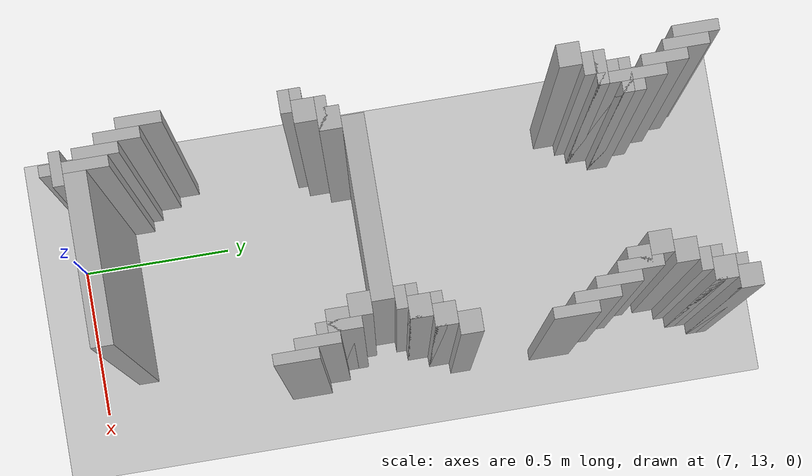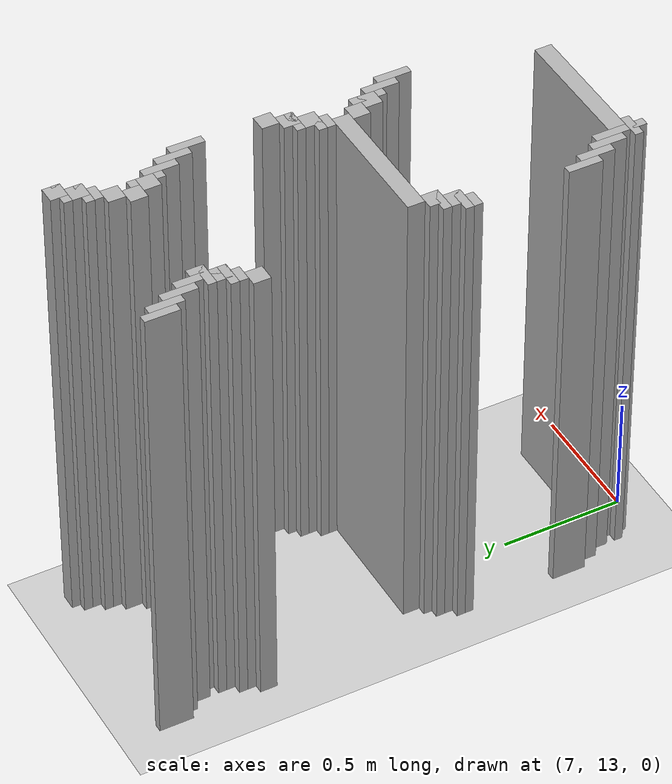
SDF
<sdf version="1.6">
 <world name="slam_world">
  <model name="ground_plane">
   <static>true</static>
   <link name="link">
    <collision name="collision">
     <geometry><plane><normal>0 0 1</normal><size>100 100</size></plane></geometry>
    </collision>
    <visual name="visual">
     <geometry><plane><normal>0 0 1</normal><size>100 100</size></plane></geometry>
     <material>
      <ambient>0.8 0.8 0.8 1</ambient>
      <diffuse>0.8 0.8 0.8 1</diffuse>
      <specular>0.8 0.8 0.8 1</specular>
     </material>
    </visual>
   </link>
  </model>
  <model name="wall_778">
   <static>true</static>
   <pose>6.769141531322505 15.034802784222737 1.0 0 0 0</pose>
   <link name="link">
    <collision name="collision">
     <geometry><box><size>0.03480278422273782 0.13921113689095127 2.0</size></box></geometry>
    </collision>
    <visual name="visual">
     <geometry><box><size>0.03480278422273782 0.13921113689095127 2.0</size></box></geometry>
     <material><ambient>0.5 0.5 0.5 1</ambient><diffuse>0.7 0.7 0.7 1</diffuse></material>
    </visual>
   </link>
  </model>
  <model name="wall_779">
   <static>true</static>
   <pose>7.517401392111369 15.069605568445475 1.0 0 0 0</pose>
   <link name="link">
    <collision name="collision">
     <geometry><box><size>0.06960556844547564 0.06960556844547564 2.0</size></box></geometry>
    </collision>
    <visual name="visual">
     <geometry><box><size>0.06960556844547564 0.06960556844547564 2.0</size></box></geometry>
     <material><ambient>0.5 0.5 0.5 1</ambient><diffuse>0.7 0.7 0.7 1</diffuse></material>
    </visual>
   </link>
  </model>
  <model name="wall_790">
   <static>true</static>
   <pose>6.803944315545244 15.0 1.0 0 0 0</pose>
   <link name="link">
    <collision name="collision">
     <geometry><box><size>0.03480278422273782 0.13921113689095127 2.0</size></box></geometry>
    </collision>
    <visual name="visual">
     <geometry><box><size>0.03480278422273782 0.13921113689095127 2.0</size></box></geometry>
     <material><ambient>0.5 0.5 0.5 1</ambient><diffuse>0.7 0.7 0.7 1</diffuse></material>
    </visual>
   </link>
  </model>
  <model name="wall_791">
   <static>true</static>
   <pose>7.5 15.052204176334106 1.0 0 0 0</pose>
   <link name="link">
    <collision name="collision">
     <geometry><box><size>0.10440835266821345 0.03480278422273782 2.0</size></box></geometry>
    </collision>
    <visual name="visual">
     <geometry><box><size>0.10440835266821345 0.03480278422273782 2.0</size></box></geometry>
     <material><ambient>0.5 0.5 0.5 1</ambient><diffuse>0.7 0.7 0.7 1</diffuse></material>
    </visual>
   </link>
  </model>
  <model name="wall_801">
   <static>true</static>
   <pose>7.48259860788863 15.0 1.0 0 0 0</pose>
   <link name="link">
    <collision name="collision">
     <geometry><box><size>0.06960556844547564 0.06960556844547564 2.0</size></box></geometry>
    </collision>
    <visual name="visual">
     <geometry><box><size>0.06960556844547564 0.06960556844547564 2.0</size></box></geometry>
     <material><ambient>0.5 0.5 0.5 1</ambient><diffuse>0.7 0.7 0.7 1</diffuse></material>
    </visual>
   </link>
  </model>
  <model name="wall_811">
   <static>true</static>
   <pose>6.838747099767981 14.930394431554523 1.0 0 0 0</pose>
   <link name="link">
    <collision name="collision">
     <geometry><box><size>0.03480278422273782 0.13921113689095127 2.0</size></box></geometry>
    </collision>
    <visual name="visual">
     <geometry><box><size>0.03480278422273782 0.13921113689095127 2.0</size></box></geometry>
     <material><ambient>0.5 0.5 0.5 1</ambient><diffuse>0.7 0.7 0.7 1</diffuse></material>
    </visual>
   </link>
  </model>
  <model name="wall_812">
   <static>true</static>
   <pose>7.465197215777262 14.982598607888631 1.0 0 0 0</pose>
   <link name="link">
    <collision name="collision">
     <geometry><box><size>0.10440835266821345 0.03480278422273782 2.0</size></box></geometry>
    </collision>
    <visual name="visual">
     <geometry><box><size>0.10440835266821345 0.03480278422273782 2.0</size></box></geometry>
     <material><ambient>0.5 0.5 0.5 1</ambient><diffuse>0.7 0.7 0.7 1</diffuse></material>
    </visual>
   </link>
  </model>
  <model name="wall_821">
   <static>true</static>
   <pose>7.447795823665893 14.947795823665892 1.0 0 0 0</pose>
   <link name="link">
    <collision name="collision">
     <geometry><box><size>0.06960556844547564 0.03480278422273782 2.0</size></box></geometry>
    </collision>
    <visual name="visual">
     <geometry><box><size>0.06960556844547564 0.03480278422273782 2.0</size></box></geometry>
     <material><ambient>0.5 0.5 0.5 1</ambient><diffuse>0.7 0.7 0.7 1</diffuse></material>
    </visual>
   </link>
  </model>
  <model name="wall_831">
   <static>true</static>
   <pose>6.8735498839907185 14.825986078886311 1.0 0 0 0</pose>
   <link name="link">
    <collision name="collision">
     <geometry><box><size>0.03480278422273782 0.2088167053364269 2.0</size></box></geometry>
    </collision>
    <visual name="visual">
     <geometry><box><size>0.03480278422273782 0.2088167053364269 2.0</size></box></geometry>
     <material><ambient>0.5 0.5 0.5 1</ambient><diffuse>0.7 0.7 0.7 1</diffuse></material>
    </visual>
   </link>
  </model>
  <model name="wall_832">
   <static>true</static>
   <pose>7.412993039443156 14.895591647331786 1.0 0 0 0</pose>
   <link name="link">
    <collision name="collision">
     <geometry><box><size>0.06960556844547564 0.06960556844547564 2.0</size></box></geometry>
    </collision>
    <visual name="visual">
     <geometry><box><size>0.06960556844547564 0.06960556844547564 2.0</size></box></geometry>
     <material><ambient>0.5 0.5 0.5 1</ambient><diffuse>0.7 0.7 0.7 1</diffuse></material>
    </visual>
   </link>
  </model>
  <model name="wall_849">
   <static>true</static>
   <pose>6.908352668213457 14.825986078886311 1.0 0 0 0</pose>
   <link name="link">
    <collision name="collision">
     <geometry><box><size>0.03480278422273782 0.06960556844547564 2.0</size></box></geometry>
    </collision>
    <visual name="visual">
     <geometry><box><size>0.03480278422273782 0.06960556844547564 2.0</size></box></geometry>
     <material><ambient>0.5 0.5 0.5 1</ambient><diffuse>0.7 0.7 0.7 1</diffuse></material>
    </visual>
   </link>
  </model>
  <model name="wall_850">
   <static>true</static>
   <pose>7.378190255220417 14.825986078886311 1.0 0 0 0</pose>
   <link name="link">
    <collision name="collision">
     <geometry><box><size>0.06960556844547564 0.06960556844547564 2.0</size></box></geometry>
    </collision>
    <visual name="visual">
     <geometry><box><size>0.06960556844547564 0.06960556844547564 2.0</size></box></geometry>
     <material><ambient>0.5 0.5 0.5 1</ambient><diffuse>0.7 0.7 0.7 1</diffuse></material>
    </visual>
   </link>
  </model>
  <model name="wall_861">
   <static>true</static>
   <pose>6.8735498839907185 14.80858468677494 1.0 0 0 0</pose>
   <link name="link">
    <collision name="collision">
     <geometry><box><size>0.10440835266821345 0.03480278422273782 2.0</size></box></geometry>
    </collision>
    <visual name="visual">
     <geometry><box><size>0.10440835266821345 0.03480278422273782 2.0</size></box></geometry>
     <material><ambient>0.5 0.5 0.5 1</ambient><diffuse>0.7 0.7 0.7 1</diffuse></material>
    </visual>
   </link>
  </model>
  <model name="wall_862">
   <static>true</static>
   <pose>7.430394431554524 14.756380510440835 1.0 0 0 0</pose>
   <link name="link">
    <collision name="collision">
     <geometry><box><size>0.03480278422273782 0.13921113689095127 2.0</size></box></geometry>
    </collision>
    <visual name="visual">
     <geometry><box><size>0.03480278422273782 0.13921113689095127 2.0</size></box></geometry>
     <material><ambient>0.5 0.5 0.5 1</ambient><diffuse>0.7 0.7 0.7 1</diffuse></material>
    </visual>
   </link>
  </model>
  <model name="wall_872">
   <static>true</static>
   <pose>6.85614849187935 14.756380510440835 1.0 0 0 0</pose>
   <link name="link">
    <collision name="collision">
     <geometry><box><size>0.06960556844547564 0.06960556844547564 2.0</size></box></geometry>
    </collision>
    <visual name="visual">
     <geometry><box><size>0.06960556844547564 0.06960556844547564 2.0</size></box></geometry>
     <material><ambient>0.5 0.5 0.5 1</ambient><diffuse>0.7 0.7 0.7 1</diffuse></material>
    </visual>
   </link>
  </model>
  <model name="wall_873">
   <static>true</static>
   <pose>7.412993039443156 14.756380510440835 1.0 0 0 0</pose>
   <link name="link">
    <collision name="collision">
     <geometry><box><size>0.06960556844547564 0.06960556844547564 2.0</size></box></geometry>
    </collision>
    <visual name="visual">
     <geometry><box><size>0.06960556844547564 0.06960556844547564 2.0</size></box></geometry>
     <material><ambient>0.5 0.5 0.5 1</ambient><diffuse>0.7 0.7 0.7 1</diffuse></material>
    </visual>
   </link>
  </model>
  <model name="wall_884">
   <static>true</static>
   <pose>6.838747099767981 14.738979118329466 1.0 0 0 0</pose>
   <link name="link">
    <collision name="collision">
     <geometry><box><size>0.10440835266821345 0.03480278422273782 2.0</size></box></geometry>
    </collision>
    <visual name="visual">
     <geometry><box><size>0.10440835266821345 0.03480278422273782 2.0</size></box></geometry>
     <material><ambient>0.5 0.5 0.5 1</ambient><diffuse>0.7 0.7 0.7 1</diffuse></material>
    </visual>
   </link>
  </model>
  <model name="wall_885">
   <static>true</static>
   <pose>7.465197215777262 14.68677494199536 1.0 0 0 0</pose>
   <link name="link">
    <collision name="collision">
     <geometry><box><size>0.03480278422273782 0.13921113689095127 2.0</size></box></geometry>
    </collision>
    <visual name="visual">
     <geometry><box><size>0.03480278422273782 0.13921113689095127 2.0</size></box></geometry>
     <material><ambient>0.5 0.5 0.5 1</ambient><diffuse>0.7 0.7 0.7 1</diffuse></material>
    </visual>
   </link>
  </model>
  <model name="wall_894">
   <static>true</static>
   <pose>6.821345707656612 14.704176334106728 1.0 0 0 0</pose>
   <link name="link">
    <collision name="collision">
     <geometry><box><size>0.06960556844547564 0.03480278422273782 2.0</size></box></geometry>
    </collision>
    <visual name="visual">
     <geometry><box><size>0.06960556844547564 0.03480278422273782 2.0</size></box></geometry>
     <material><ambient>0.5 0.5 0.5 1</ambient><diffuse>0.7 0.7 0.7 1</diffuse></material>
    </visual>
   </link>
  </model>
  <model name="wall_904">
   <static>true</static>
   <pose>6.786542923433874 14.65197215777262 1.0 0 0 0</pose>
   <link name="link">
    <collision name="collision">
     <geometry><box><size>0.06960556844547564 0.06960556844547564 2.0</size></box></geometry>
    </collision>
    <visual name="visual">
     <geometry><box><size>0.06960556844547564 0.06960556844547564 2.0</size></box></geometry>
     <material><ambient>0.5 0.5 0.5 1</ambient><diffuse>0.7 0.7 0.7 1</diffuse></material>
    </visual>
   </link>
  </model>
  <model name="wall_905">
   <static>true</static>
   <pose>7.5 14.617169373549883 1.0 0 0 0</pose>
   <link name="link">
    <collision name="collision">
     <geometry><box><size>0.03480278422273782 0.13921113689095127 2.0</size></box></geometry>
    </collision>
    <visual name="visual">
     <geometry><box><size>0.03480278422273782 0.13921113689095127 2.0</size></box></geometry>
     <material><ambient>0.5 0.5 0.5 1</ambient><diffuse>0.7 0.7 0.7 1</diffuse></material>
    </visual>
   </link>
  </model>
  <model name="wall_917">
   <static>true</static>
   <pose>7.534802784222737 14.547563805104408 1.0 0 0 0</pose>
   <link name="link">
    <collision name="collision">
     <geometry><box><size>0.03480278422273782 0.13921113689095127 2.0</size></box></geometry>
    </collision>
    <visual name="visual">
     <geometry><box><size>0.03480278422273782 0.13921113689095127 2.0</size></box></geometry>
     <material><ambient>0.5 0.5 0.5 1</ambient><diffuse>0.7 0.7 0.7 1</diffuse></material>
    </visual>
   </link>
  </model>
  <model name="wall_1037">
   <static>true</static>
   <pose>7.517401392111369 14.234338747099768 1.0 0 0 0</pose>
   <link name="link">
    <collision name="collision">
     <geometry><box><size>0.06960556844547564 0.06960556844547564 2.0</size></box></geometry>
    </collision>
    <visual name="visual">
     <geometry><box><size>0.06960556844547564 0.06960556844547564 2.0</size></box></geometry>
     <material><ambient>0.5 0.5 0.5 1</ambient><diffuse>0.7 0.7 0.7 1</diffuse></material>
    </visual>
   </link>
  </model>
  <model name="wall_1052">
   <static>true</static>
   <pose>7.48259860788863 14.164733178654291 1.0 0 0 0</pose>
   <link name="link">
    <collision name="collision">
     <geometry><box><size>0.06960556844547564 0.06960556844547564 2.0</size></box></geometry>
    </collision>
    <visual name="visual">
     <geometry><box><size>0.06960556844547564 0.06960556844547564 2.0</size></box></geometry>
     <material><ambient>0.5 0.5 0.5 1</ambient><diffuse>0.7 0.7 0.7 1</diffuse></material>
    </visual>
   </link>
  </model>
  <model name="wall_1067">
   <static>true</static>
   <pose>7.465197215777262 14.147331786542923 1.0 0 0 0</pose>
   <link name="link">
    <collision name="collision">
     <geometry><box><size>0.10440835266821345 0.03480278422273782 2.0</size></box></geometry>
    </collision>
    <visual name="visual">
     <geometry><box><size>0.10440835266821345 0.03480278422273782 2.0</size></box></geometry>
     <material><ambient>0.5 0.5 0.5 1</ambient><diffuse>0.7 0.7 0.7 1</diffuse></material>
    </visual>
   </link>
  </model>
  <model name="wall_1079">
   <static>true</static>
   <pose>7.447795823665893 14.095127610208817 1.0 0 0 0</pose>
   <link name="link">
    <collision name="collision">
     <geometry><box><size>0.06960556844547564 0.06960556844547564 2.0</size></box></geometry>
    </collision>
    <visual name="visual">
     <geometry><box><size>0.06960556844547564 0.06960556844547564 2.0</size></box></geometry>
     <material><ambient>0.5 0.5 0.5 1</ambient><diffuse>0.7 0.7 0.7 1</diffuse></material>
    </visual>
   </link>
  </model>
  <model name="wall_1090">
   <static>true</static>
   <pose>7.430394431554524 14.077726218097448 1.0 0 0 0</pose>
   <link name="link">
    <collision name="collision">
     <geometry><box><size>0.10440835266821345 0.03480278422273782 2.0</size></box></geometry>
    </collision>
    <visual name="visual">
     <geometry><box><size>0.10440835266821345 0.03480278422273782 2.0</size></box></geometry>
     <material><ambient>0.5 0.5 0.5 1</ambient><diffuse>0.7 0.7 0.7 1</diffuse></material>
    </visual>
   </link>
  </model>
  <model name="wall_1102">
   <static>true</static>
   <pose>7.412993039443156 14.042923433874709 1.0 0 0 0</pose>
   <link name="link">
    <collision name="collision">
     <geometry><box><size>0.06960556844547564 0.03480278422273782 2.0</size></box></geometry>
    </collision>
    <visual name="visual">
     <geometry><box><size>0.06960556844547564 0.03480278422273782 2.0</size></box></geometry>
     <material><ambient>0.5 0.5 0.5 1</ambient><diffuse>0.7 0.7 0.7 1</diffuse></material>
    </visual>
   </link>
  </model>
  <model name="wall_1112">
   <static>true</static>
   <pose>7.134570765661253 13.990719257540603 1.0 0 0 0</pose>
   <link name="link">
    <collision name="collision">
     <geometry><box><size>0.5568445475638051 0.06960556844547564 2.0</size></box></geometry>
    </collision>
    <visual name="visual">
     <geometry><box><size>0.5568445475638051 0.06960556844547564 2.0</size></box></geometry>
     <material><ambient>0.5 0.5 0.5 1</ambient><diffuse>0.7 0.7 0.7 1</diffuse></material>
    </visual>
   </link>
  </model>
  <model name="wall_1126">
   <static>true</static>
   <pose>6.85614849187935 13.921113689095128 1.0 0 0 0</pose>
   <link name="link">
    <collision name="collision">
     <geometry><box><size>0.06960556844547564 0.06960556844547564 2.0</size></box></geometry>
    </collision>
    <visual name="visual">
     <geometry><box><size>0.06960556844547564 0.06960556844547564 2.0</size></box></geometry>
     <material><ambient>0.5 0.5 0.5 1</ambient><diffuse>0.7 0.7 0.7 1</diffuse></material>
    </visual>
   </link>
  </model>
  <model name="wall_1127">
   <static>true</static>
   <pose>7.412993039443156 13.921113689095128 1.0 0 0 0</pose>
   <link name="link">
    <collision name="collision">
     <geometry><box><size>0.06960556844547564 0.06960556844547564 2.0</size></box></geometry>
    </collision>
    <visual name="visual">
     <geometry><box><size>0.06960556844547564 0.06960556844547564 2.0</size></box></geometry>
     <material><ambient>0.5 0.5 0.5 1</ambient><diffuse>0.7 0.7 0.7 1</diffuse></material>
    </visual>
   </link>
  </model>
  <model name="wall_1141">
   <static>true</static>
   <pose>6.838747099767981 13.903712296983759 1.0 0 0 0</pose>
   <link name="link">
    <collision name="collision">
     <geometry><box><size>0.10440835266821345 0.03480278422273782 2.0</size></box></geometry>
    </collision>
    <visual name="visual">
     <geometry><box><size>0.10440835266821345 0.03480278422273782 2.0</size></box></geometry>
     <material><ambient>0.5 0.5 0.5 1</ambient><diffuse>0.7 0.7 0.7 1</diffuse></material>
    </visual>
   </link>
  </model>
  <model name="wall_1142">
   <static>true</static>
   <pose>7.465197215777262 13.851508120649651 1.0 0 0 0</pose>
   <link name="link">
    <collision name="collision">
     <geometry><box><size>0.03480278422273782 0.13921113689095127 2.0</size></box></geometry>
    </collision>
    <visual name="visual">
     <geometry><box><size>0.03480278422273782 0.13921113689095127 2.0</size></box></geometry>
     <material><ambient>0.5 0.5 0.5 1</ambient><diffuse>0.7 0.7 0.7 1</diffuse></material>
    </visual>
   </link>
  </model>
  <model name="wall_1156">
   <static>true</static>
   <pose>6.821345707656612 13.851508120649651 1.0 0 0 0</pose>
   <link name="link">
    <collision name="collision">
     <geometry><box><size>0.06960556844547564 0.06960556844547564 2.0</size></box></geometry>
    </collision>
    <visual name="visual">
     <geometry><box><size>0.06960556844547564 0.06960556844547564 2.0</size></box></geometry>
     <material><ambient>0.5 0.5 0.5 1</ambient><diffuse>0.7 0.7 0.7 1</diffuse></material>
    </visual>
   </link>
  </model>
  <model name="wall_1157">
   <static>true</static>
   <pose>7.447795823665893 13.851508120649651 1.0 0 0 0</pose>
   <link name="link">
    <collision name="collision">
     <geometry><box><size>0.06960556844547564 0.06960556844547564 2.0</size></box></geometry>
    </collision>
    <visual name="visual">
     <geometry><box><size>0.06960556844547564 0.06960556844547564 2.0</size></box></geometry>
     <material><ambient>0.5 0.5 0.5 1</ambient><diffuse>0.7 0.7 0.7 1</diffuse></material>
    </visual>
   </link>
  </model>
  <model name="wall_1171">
   <static>true</static>
   <pose>6.803944315545244 13.834106728538282 1.0 0 0 0</pose>
   <link name="link">
    <collision name="collision">
     <geometry><box><size>0.10440835266821345 0.03480278422273782 2.0</size></box></geometry>
    </collision>
    <visual name="visual">
     <geometry><box><size>0.10440835266821345 0.03480278422273782 2.0</size></box></geometry>
     <material><ambient>0.5 0.5 0.5 1</ambient><diffuse>0.7 0.7 0.7 1</diffuse></material>
    </visual>
   </link>
  </model>
  <model name="wall_1172">
   <static>true</static>
   <pose>7.5 13.781902552204176 1.0 0 0 0</pose>
   <link name="link">
    <collision name="collision">
     <geometry><box><size>0.03480278422273782 0.13921113689095127 2.0</size></box></geometry>
    </collision>
    <visual name="visual">
     <geometry><box><size>0.03480278422273782 0.13921113689095127 2.0</size></box></geometry>
     <material><ambient>0.5 0.5 0.5 1</ambient><diffuse>0.7 0.7 0.7 1</diffuse></material>
    </visual>
   </link>
  </model>
  <model name="wall_1182">
   <static>true</static>
   <pose>6.786542923433874 13.799303944315545 1.0 0 0 0</pose>
   <link name="link">
    <collision name="collision">
     <geometry><box><size>0.06960556844547564 0.03480278422273782 2.0</size></box></geometry>
    </collision>
    <visual name="visual">
     <geometry><box><size>0.06960556844547564 0.03480278422273782 2.0</size></box></geometry>
     <material><ambient>0.5 0.5 0.5 1</ambient><diffuse>0.7 0.7 0.7 1</diffuse></material>
    </visual>
   </link>
  </model>
  <model name="wall_1194">
   <static>true</static>
   <pose>7.534802784222737 13.7122969837587 1.0 0 0 0</pose>
   <link name="link">
    <collision name="collision">
     <geometry><box><size>0.03480278422273782 0.13921113689095127 2.0</size></box></geometry>
    </collision>
    <visual name="visual">
     <geometry><box><size>0.03480278422273782 0.13921113689095127 2.0</size></box></geometry>
     <material><ambient>0.5 0.5 0.5 1</ambient><diffuse>0.7 0.7 0.7 1</diffuse></material>
    </visual>
   </link>
  </model>
  <model name="wall_1300">
   <static>true</static>
   <pose>6.769141531322505 13.364269141531322 1.0 0 0 0</pose>
   <link name="link">
    <collision name="collision">
     <geometry><box><size>0.03480278422273782 0.13921113689095127 2.0</size></box></geometry>
    </collision>
    <visual name="visual">
     <geometry><box><size>0.03480278422273782 0.13921113689095127 2.0</size></box></geometry>
     <material><ambient>0.5 0.5 0.5 1</ambient><diffuse>0.7 0.7 0.7 1</diffuse></material>
    </visual>
   </link>
  </model>
  <model name="wall_1318">
   <static>true</static>
   <pose>6.803944315545244 13.294663573085847 1.0 0 0 0</pose>
   <link name="link">
    <collision name="collision">
     <geometry><box><size>0.03480278422273782 0.13921113689095127 2.0</size></box></geometry>
    </collision>
    <visual name="visual">
     <geometry><box><size>0.03480278422273782 0.13921113689095127 2.0</size></box></geometry>
     <material><ambient>0.5 0.5 0.5 1</ambient><diffuse>0.7 0.7 0.7 1</diffuse></material>
    </visual>
   </link>
  </model>
  <model name="wall_1330">
   <static>true</static>
   <pose>6.838747099767981 13.22505800464037 1.0 0 0 0</pose>
   <link name="link">
    <collision name="collision">
     <geometry><box><size>0.03480278422273782 0.13921113689095127 2.0</size></box></geometry>
    </collision>
    <visual name="visual">
     <geometry><box><size>0.03480278422273782 0.13921113689095127 2.0</size></box></geometry>
     <material><ambient>0.5 0.5 0.5 1</ambient><diffuse>0.7 0.7 0.7 1</diffuse></material>
    </visual>
   </link>
  </model>
  <model name="wall_1342">
   <static>true</static>
   <pose>6.8735498839907185 13.155452436194896 1.0 0 0 0</pose>
   <link name="link">
    <collision name="collision">
     <geometry><box><size>0.03480278422273782 0.2088167053364269 2.0</size></box></geometry>
    </collision>
    <visual name="visual">
     <geometry><box><size>0.03480278422273782 0.2088167053364269 2.0</size></box></geometry>
     <material><ambient>0.5 0.5 0.5 1</ambient><diffuse>0.7 0.7 0.7 1</diffuse></material>
    </visual>
   </link>
  </model>
  <model name="wall_1359">
   <static>true</static>
   <pose>7.151972157772621 13.155452436194896 1.0 0 0 0</pose>
   <link name="link">
    <collision name="collision">
     <geometry><box><size>0.5220417633410672 0.06960556844547564 2.0</size></box></geometry>
    </collision>
    <visual name="visual">
     <geometry><box><size>0.5220417633410672 0.06960556844547564 2.0</size></box></geometry>
     <material><ambient>0.5 0.5 0.5 1</ambient><diffuse>0.7 0.7 0.7 1</diffuse></material>
    </visual>
   </link>
  </model>
  <model name="wall_1377">
   <static>true</static>
   <pose>6.8735498839907185 13.103248259860788 1.0 0 0 0</pose>
   <link name="link">
    <collision name="collision">
     <geometry><box><size>0.10440835266821345 0.03480278422273782 2.0</size></box></geometry>
    </collision>
    <visual name="visual">
     <geometry><box><size>0.10440835266821345 0.03480278422273782 2.0</size></box></geometry>
     <material><ambient>0.5 0.5 0.5 1</ambient><diffuse>0.7 0.7 0.7 1</diffuse></material>
    </visual>
   </link>
  </model>
 </world>
</sdf>
